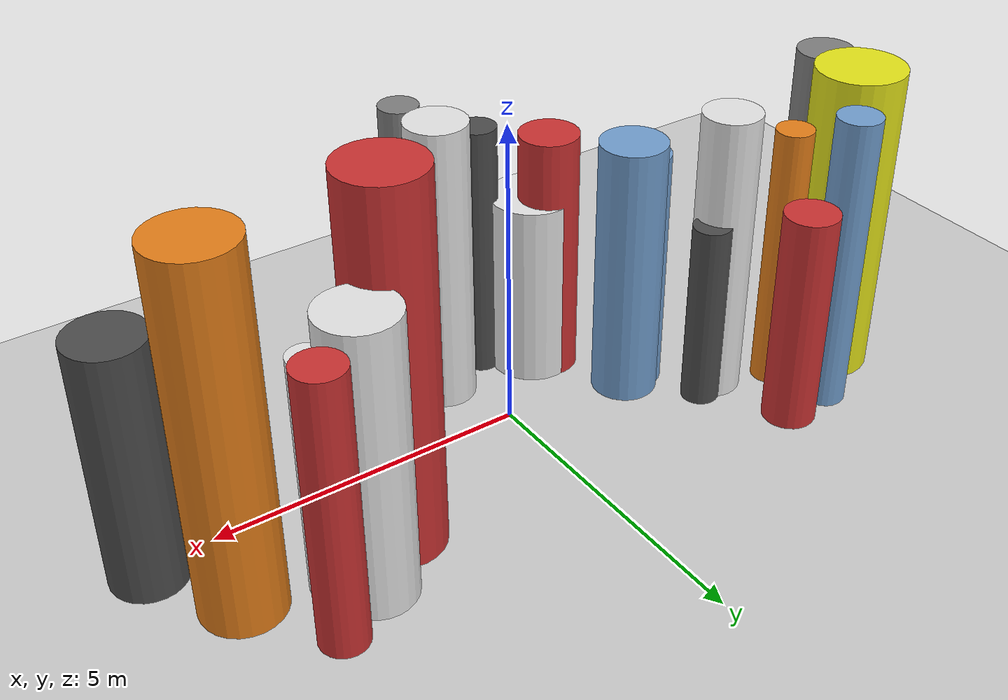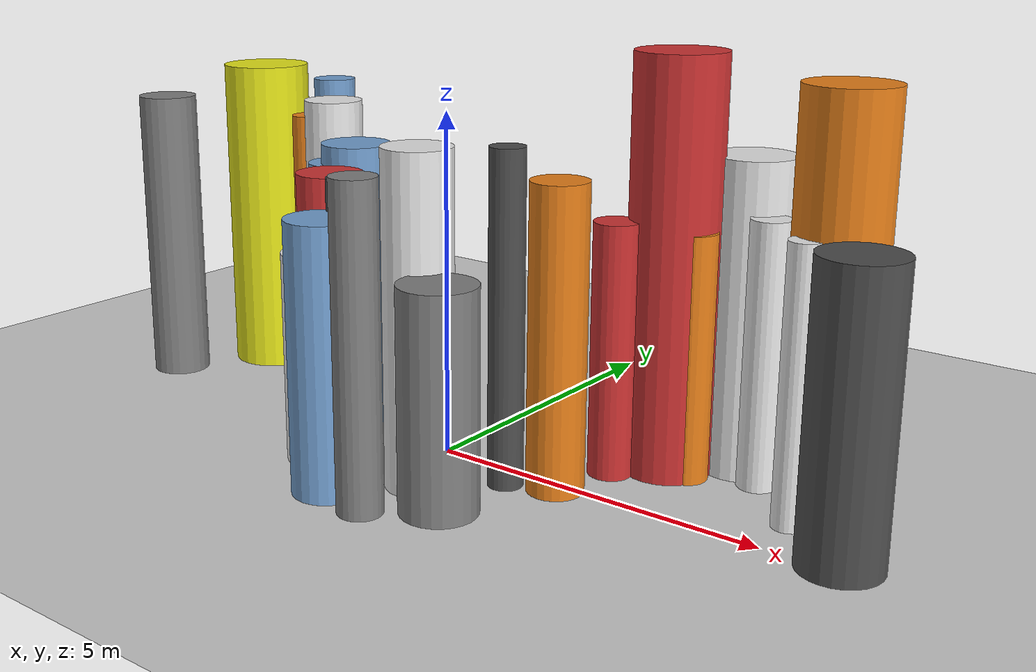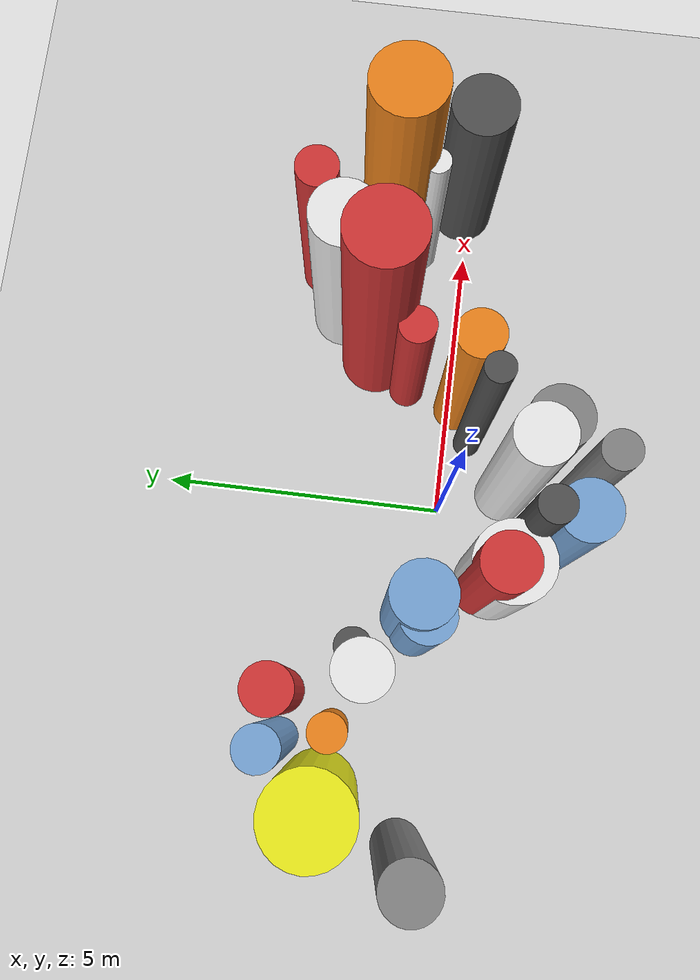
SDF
<?xml version='1.0'?>
<sdf version='1.6'>
  <world name='routeA_rl_v1__dense_recovery__rl_train__s_turn_multi_obstacle__000091'>
    <!-- Sun light -->
    <light name='sun' type='directional'>
      <cast_shadows>1</cast_shadows>
      <pose>0 0 10 0 0 0</pose>
      <diffuse>0.8 0.8 0.8 1</diffuse>
      <specular>0.2 0.2 0.2 1</specular>
      <attenuation>
        <range>1000</range>
        <constant>0.9</constant>
        <linear>0.01</linear>
        <quadratic>0.001</quadratic>
      </attenuation>
      <direction>-0.5 0.1 -0.9</direction>
    </light>

    <!-- Ground plane -->
    <model name='ground_plane'>
      <static>1</static>
      <link name='link'>
        <collision name='collision'>
          <geometry>
            <plane>
              <normal>0 0 1</normal>
              <size>100 100</size>
            </plane>
          </geometry>
          <surface>
            <contact>
              <collide_bitmask>65535</collide_bitmask>
              <ode/>
            </contact>
            <friction>
              <ode>
                <mu>100</mu>
                <mu2>50</mu2>
              </ode>
              <torsional><ode/></torsional>
            </friction>
            <bounce/>
          </surface>
          <max_contacts>10</max_contacts>
        </collision>
        <visual name='visual'>
          <cast_shadows>0</cast_shadows>
          <geometry>
            <plane>
              <normal>0 0 1</normal>
              <size>100 100</size>
            </plane>
          </geometry>
          <material>
            <script>
              <uri>file://media/materials/scripts/gazebo.material</uri>
              <n>Gazebo/Grey</n>
            </script>
          </material>
        </visual>
      </link>
    </model>

    <!-- Environment -->
    <magnetic_field>6e-06 2.3e-05 -4.2e-05</magnetic_field>
    <atmosphere type='adiabatic'/>
    <physics name='default_physics' default='0' type='ode'>
      <gravity>0 0 -9.8</gravity>
      <max_step_size>0.004</max_step_size>
      <real_time_factor>1</real_time_factor>
      <real_time_update_rate>250</real_time_update_rate>
    </physics>
    <scene>
      <ambient>0.4 0.4 0.4 1</ambient>
      <background>0.7 0.7 0.7 1</background>
      <shadows>1</shadows>
    </scene>
    <wind/>
    <spherical_coordinates>
      <surface_model>EARTH_WGS84</surface_model>
      <latitude_deg>0</latitude_deg>
      <longitude_deg>0</longitude_deg>
      <elevation>0</elevation>
      <heading_deg>0</heading_deg>
    </spherical_coordinates>

    <!-- ============ OBSTACLES (28) ============ -->
    <model name='s_turn_obs_0'>
      <static>1</static>
      <link name='link'>
        <visual name='visual'>
          <geometry>
            <cylinder>
              <radius>0.4577</radius>
              <length>4.6838</length>
            </cylinder>
          </geometry>
          <material>
            <script>
              <n>Gazebo/Grey</n>
              <uri>file://media/materials/scripts/gazebo.material</uri>
            </script>
            <ambient>0.5 0.5 0.5 1</ambient>
          </material>
        </visual>
        <collision name='collision'>
          <geometry>
            <cylinder>
              <radius>0.4577</radius>
              <length>4.6838</length>
            </cylinder>
          </geometry>
          <max_contacts>10</max_contacts>
          <surface>
            <contact><ode/></contact>
            <bounce/>
            <friction>
              <ode><mu>1</mu><mu2>1</mu2></ode>
              <torsional><ode/></torsional>
            </friction>
          </surface>
        </collision>
      </link>
      <pose>-6.0000 0.0941 2.3419 0 0 0.0000</pose>
    </model>

    <model name='s_turn_obs_1'>
      <static>1</static>
      <link name='link'>
        <visual name='visual'>
          <geometry>
            <cylinder>
              <radius>0.6924</radius>
              <length>5.1231</length>
            </cylinder>
          </geometry>
          <material>
            <script>
              <n>Gazebo/Yellow</n>
              <uri>file://media/materials/scripts/gazebo.material</uri>
            </script>
            <ambient>0.9 0.9 0.1 1</ambient>
          </material>
        </visual>
        <collision name='collision'>
          <geometry>
            <cylinder>
              <radius>0.6924</radius>
              <length>5.1231</length>
            </cylinder>
          </geometry>
          <max_contacts>10</max_contacts>
          <surface>
            <contact><ode/></contact>
            <bounce/>
            <friction>
              <ode><mu>1</mu><mu2>1</mu2></ode>
              <torsional><ode/></torsional>
            </friction>
          </surface>
        </collision>
      </link>
      <pose>-5.2000 1.5701 2.5615 0 0 0.0000</pose>
    </model>

    <model name='s_turn_obs_2'>
      <static>1</static>
      <link name='link'>
        <visual name='visual'>
          <geometry>
            <cylinder>
              <radius>0.3434</radius>
              <length>4.8623</length>
            </cylinder>
          </geometry>
          <material>
            <script>
              <n>Gazebo/Blue</n>
              <uri>file://media/materials/scripts/gazebo.material</uri>
            </script>
            <ambient>0.447 0.624 0.812 1</ambient>
          </material>
        </visual>
        <collision name='collision'>
          <geometry>
            <cylinder>
              <radius>0.3434</radius>
              <length>4.8623</length>
            </cylinder>
          </geometry>
          <max_contacts>10</max_contacts>
          <surface>
            <contact><ode/></contact>
            <bounce/>
            <friction>
              <ode><mu>1</mu><mu2>1</mu2></ode>
              <torsional><ode/></torsional>
            </friction>
          </surface>
        </collision>
      </link>
      <pose>-4.4000 2.3732 2.4312 0 0 0.0000</pose>
    </model>

    <model name='s_turn_obs_3'>
      <static>1</static>
      <link name='link'>
        <visual name='visual'>
          <geometry>
            <cylinder>
              <radius>0.4193</radius>
              <length>3.5834</length>
            </cylinder>
          </geometry>
          <material>
            <script>
              <n>Gazebo/Red</n>
              <uri>file://media/materials/scripts/gazebo.material</uri>
            </script>
            <ambient>0.8 0.2 0.2 1</ambient>
          </material>
        </visual>
        <collision name='collision'>
          <geometry>
            <cylinder>
              <radius>0.4193</radius>
              <length>3.5834</length>
            </cylinder>
          </geometry>
          <max_contacts>10</max_contacts>
          <surface>
            <contact><ode/></contact>
            <bounce/>
            <friction>
              <ode><mu>1</mu><mu2>1</mu2></ode>
              <torsional><ode/></torsional>
            </friction>
          </surface>
        </collision>
      </link>
      <pose>-3.6000 2.4374 1.7917 0 0 0.0000</pose>
    </model>

    <model name='s_turn_obs_4'>
      <static>1</static>
      <link name='link'>
        <visual name='visual'>
          <geometry>
            <cylinder>
              <radius>0.3004</radius>
              <length>3.0775</length>
            </cylinder>
          </geometry>
          <material>
            <script>
              <n>Gazebo/DarkGrey</n>
              <uri>file://media/materials/scripts/gazebo.material</uri>
            </script>
            <ambient>0.3 0.3 0.3 1</ambient>
          </material>
        </visual>
        <collision name='collision'>
          <geometry>
            <cylinder>
              <radius>0.3004</radius>
              <length>3.0775</length>
            </cylinder>
          </geometry>
          <max_contacts>10</max_contacts>
          <surface>
            <contact><ode/></contact>
            <bounce/>
            <friction>
              <ode><mu>1</mu><mu2>1</mu2></ode>
              <torsional><ode/></torsional>
            </friction>
          </surface>
        </collision>
      </link>
      <pose>-2.8000 1.2511 1.5388 0 0 0.0000</pose>
    </model>

    <model name='s_turn_obs_5'>
      <static>1</static>
      <link name='link'>
        <visual name='visual'>
          <geometry>
            <cylinder>
              <radius>0.5210</radius>
              <length>4.2993</length>
            </cylinder>
          </geometry>
          <material>
            <script>
              <n>Gazebo/Blue</n>
              <uri>file://media/materials/scripts/gazebo.material</uri>
            </script>
            <ambient>0.447 0.624 0.812 1</ambient>
          </material>
        </visual>
        <collision name='collision'>
          <geometry>
            <cylinder>
              <radius>0.5210</radius>
              <length>4.2993</length>
            </cylinder>
          </geometry>
          <max_contacts>10</max_contacts>
          <surface>
            <contact><ode/></contact>
            <bounce/>
            <friction>
              <ode><mu>1</mu><mu2>1</mu2></ode>
              <torsional><ode/></torsional>
            </friction>
          </surface>
        </collision>
      </link>
      <pose>-2.0000 0.3111 2.1496 0 0 0.0000</pose>
    </model>

    <model name='s_turn_obs_6'>
      <static>1</static>
      <link name='link'>
        <visual name='visual'>
          <geometry>
            <cylinder>
              <radius>0.6887</radius>
              <length>3.0522</length>
            </cylinder>
          </geometry>
          <material>
            <script>
              <n>Gazebo/White</n>
              <uri>file://media/materials/scripts/gazebo.material</uri>
            </script>
            <ambient>0.9 0.9 0.9 1</ambient>
          </material>
        </visual>
        <collision name='collision'>
          <geometry>
            <cylinder>
              <radius>0.6887</radius>
              <length>3.0522</length>
            </cylinder>
          </geometry>
          <max_contacts>10</max_contacts>
          <surface>
            <contact><ode/></contact>
            <bounce/>
            <friction>
              <ode><mu>1</mu><mu2>1</mu2></ode>
              <torsional><ode/></torsional>
            </friction>
          </surface>
        </collision>
      </link>
      <pose>-1.2000 -1.1211 1.5261 0 0 0.0000</pose>
    </model>

    <model name='s_turn_obs_7'>
      <static>1</static>
      <link name='link'>
        <visual name='visual'>
          <geometry>
            <cylinder>
              <radius>0.5052</radius>
              <length>3.8184</length>
            </cylinder>
          </geometry>
          <material>
            <script>
              <n>Gazebo/Blue</n>
              <uri>file://media/materials/scripts/gazebo.material</uri>
            </script>
            <ambient>0.447 0.624 0.812 1</ambient>
          </material>
        </visual>
        <collision name='collision'>
          <geometry>
            <cylinder>
              <radius>0.5052</radius>
              <length>3.8184</length>
            </cylinder>
          </geometry>
          <max_contacts>10</max_contacts>
          <surface>
            <contact><ode/></contact>
            <bounce/>
            <friction>
              <ode><mu>1</mu><mu2>1</mu2></ode>
              <torsional><ode/></torsional>
            </friction>
          </surface>
        </collision>
      </link>
      <pose>-0.4000 -2.0854 1.9092 0 0 0.0000</pose>
    </model>

    <model name='s_turn_obs_8'>
      <static>1</static>
      <link name='link'>
        <visual name='visual'>
          <geometry>
            <cylinder>
              <radius>0.3192</radius>
              <length>4.5101</length>
            </cylinder>
          </geometry>
          <material>
            <script>
              <n>Gazebo/Grey</n>
              <uri>file://media/materials/scripts/gazebo.material</uri>
            </script>
            <ambient>0.5 0.5 0.5 1</ambient>
          </material>
        </visual>
        <collision name='collision'>
          <geometry>
            <cylinder>
              <radius>0.3192</radius>
              <length>4.5101</length>
            </cylinder>
          </geometry>
          <max_contacts>10</max_contacts>
          <surface>
            <contact><ode/></contact>
            <bounce/>
            <friction>
              <ode><mu>1</mu><mu2>1</mu2></ode>
              <torsional><ode/></torsional>
            </friction>
          </surface>
        </collision>
      </link>
      <pose>0.4000 -2.3154 2.2551 0 0 0.0000</pose>
    </model>

    <model name='s_turn_obs_9'>
      <static>1</static>
      <link name='link'>
        <visual name='visual'>
          <geometry>
            <cylinder>
              <radius>0.5480</radius>
              <length>3.1179</length>
            </cylinder>
          </geometry>
          <material>
            <script>
              <n>Gazebo/Grey</n>
              <uri>file://media/materials/scripts/gazebo.material</uri>
            </script>
            <ambient>0.5 0.5 0.5 1</ambient>
          </material>
        </visual>
        <collision name='collision'>
          <geometry>
            <cylinder>
              <radius>0.5480</radius>
              <length>3.1179</length>
            </cylinder>
          </geometry>
          <max_contacts>10</max_contacts>
          <surface>
            <contact><ode/></contact>
            <bounce/>
            <friction>
              <ode><mu>1</mu><mu2>1</mu2></ode>
              <torsional><ode/></torsional>
            </friction>
          </surface>
        </collision>
      </link>
      <pose>1.2000 -1.6559 1.5589 0 0 0.0000</pose>
    </model>

    <model name='s_turn_obs_10'>
      <static>1</static>
      <link name='link'>
        <visual name='visual'>
          <geometry>
            <cylinder>
              <radius>0.4034</radius>
              <length>4.3114</length>
            </cylinder>
          </geometry>
          <material>
            <script>
              <n>Gazebo/Orange</n>
              <uri>file://media/materials/scripts/gazebo.material</uri>
            </script>
            <ambient>0.9 0.5 0.1 1</ambient>
          </material>
        </visual>
        <collision name='collision'>
          <geometry>
            <cylinder>
              <radius>0.4034</radius>
              <length>4.3114</length>
            </cylinder>
          </geometry>
          <max_contacts>10</max_contacts>
          <surface>
            <contact><ode/></contact>
            <bounce/>
            <friction>
              <ode><mu>1</mu><mu2>1</mu2></ode>
              <torsional><ode/></torsional>
            </friction>
          </surface>
        </collision>
      </link>
      <pose>2.0000 -0.1366 2.1557 0 0 0.0000</pose>
    </model>

    <model name='s_turn_obs_11'>
      <static>1</static>
      <link name='link'>
        <visual name='visual'>
          <geometry>
            <cylinder>
              <radius>0.6379</radius>
              <length>5.8964</length>
            </cylinder>
          </geometry>
          <material>
            <script>
              <n>Gazebo/Red</n>
              <uri>file://media/materials/scripts/gazebo.material</uri>
            </script>
            <ambient>0.8 0.2 0.2 1</ambient>
          </material>
        </visual>
        <collision name='collision'>
          <geometry>
            <cylinder>
              <radius>0.6379</radius>
              <length>5.8964</length>
            </cylinder>
          </geometry>
          <max_contacts>10</max_contacts>
          <surface>
            <contact><ode/></contact>
            <bounce/>
            <friction>
              <ode><mu>1</mu><mu2>1</mu2></ode>
              <torsional><ode/></torsional>
            </friction>
          </surface>
        </collision>
      </link>
      <pose>2.8000 1.4621 2.9482 0 0 0.0000</pose>
    </model>

    <model name='s_turn_obs_12'>
      <static>1</static>
      <link name='link'>
        <visual name='visual'>
          <geometry>
            <cylinder>
              <radius>0.5764</radius>
              <length>4.5002</length>
            </cylinder>
          </geometry>
          <material>
            <script>
              <n>Gazebo/White</n>
              <uri>file://media/materials/scripts/gazebo.material</uri>
            </script>
            <ambient>0.9 0.9 0.9 1</ambient>
          </material>
        </visual>
        <collision name='collision'>
          <geometry>
            <cylinder>
              <radius>0.5764</radius>
              <length>4.5002</length>
            </cylinder>
          </geometry>
          <max_contacts>10</max_contacts>
          <surface>
            <contact><ode/></contact>
            <bounce/>
            <friction>
              <ode><mu>1</mu><mu2>1</mu2></ode>
              <torsional><ode/></torsional>
            </friction>
          </surface>
        </collision>
      </link>
      <pose>3.6000 2.1527 2.2501 0 0 0.0000</pose>
    </model>

    <model name='s_turn_obs_13'>
      <static>1</static>
      <link name='link'>
        <visual name='visual'>
          <geometry>
            <cylinder>
              <radius>0.3595</radius>
              <length>4.3298</length>
            </cylinder>
          </geometry>
          <material>
            <script>
              <n>Gazebo/Red</n>
              <uri>file://media/materials/scripts/gazebo.material</uri>
            </script>
            <ambient>0.8 0.2 0.2 1</ambient>
          </material>
        </visual>
        <collision name='collision'>
          <geometry>
            <cylinder>
              <radius>0.3595</radius>
              <length>4.3298</length>
            </cylinder>
          </geometry>
          <max_contacts>10</max_contacts>
          <surface>
            <contact><ode/></contact>
            <bounce/>
            <friction>
              <ode><mu>1</mu><mu2>1</mu2></ode>
              <torsional><ode/></torsional>
            </friction>
          </surface>
        </collision>
      </link>
      <pose>4.4000 2.6750 2.1649 0 0 0.0000</pose>
    </model>

    <model name='s_turn_obs_14'>
      <static>1</static>
      <link name='link'>
        <visual name='visual'>
          <geometry>
            <cylinder>
              <radius>0.6225</radius>
              <length>5.6705</length>
            </cylinder>
          </geometry>
          <material>
            <script>
              <n>Gazebo/Orange</n>
              <uri>file://media/materials/scripts/gazebo.material</uri>
            </script>
            <ambient>0.9 0.5 0.1 1</ambient>
          </material>
        </visual>
        <collision name='collision'>
          <geometry>
            <cylinder>
              <radius>0.6225</radius>
              <length>5.6705</length>
            </cylinder>
          </geometry>
          <max_contacts>10</max_contacts>
          <surface>
            <contact><ode/></contact>
            <bounce/>
            <friction>
              <ode><mu>1</mu><mu2>1</mu2></ode>
              <torsional><ode/></torsional>
            </friction>
          </surface>
        </collision>
      </link>
      <pose>5.2000 1.3813 2.8353 0 0 0.0000</pose>
    </model>

    <model name='s_turn_obs_15'>
      <static>1</static>
      <link name='link'>
        <visual name='visual'>
          <geometry>
            <cylinder>
              <radius>0.5611</radius>
              <length>3.9245</length>
            </cylinder>
          </geometry>
          <material>
            <script>
              <n>Gazebo/DarkGrey</n>
              <uri>file://media/materials/scripts/gazebo.material</uri>
            </script>
            <ambient>0.3 0.3 0.3 1</ambient>
          </material>
        </visual>
        <collision name='collision'>
          <geometry>
            <cylinder>
              <radius>0.5611</radius>
              <length>3.9245</length>
            </cylinder>
          </geometry>
          <max_contacts>10</max_contacts>
          <surface>
            <contact><ode/></contact>
            <bounce/>
            <friction>
              <ode><mu>1</mu><mu2>1</mu2></ode>
              <torsional><ode/></torsional>
            </friction>
          </surface>
        </collision>
      </link>
      <pose>6.0000 0.1360 1.9622 0 0 0.0000</pose>
    </model>

    <model name='s_turn_obs2_0'>
      <static>1</static>
      <link name='link'>
        <visual name='visual'>
          <geometry>
            <cylinder>
              <radius>0.2114</radius>
              <length>3.5813</length>
            </cylinder>
          </geometry>
          <material>
            <script>
              <n>Gazebo/Blue</n>
              <uri>file://media/materials/scripts/gazebo.material</uri>
            </script>
            <ambient>0.447 0.624 0.812 1</ambient>
          </material>
        </visual>
        <collision name='collision'>
          <geometry>
            <cylinder>
              <radius>0.2114</radius>
              <length>3.5813</length>
            </cylinder>
          </geometry>
          <max_contacts>10</max_contacts>
          <surface>
            <contact><ode/></contact>
            <bounce/>
            <friction>
              <ode><mu>1</mu><mu2>1</mu2></ode>
              <torsional><ode/></torsional>
            </friction>
          </surface>
        </collision>
      </link>
      <pose>-5.0000 1.1543 1.7907 0 0 0.0000</pose>
    </model>

    <model name='s_turn_obs2_1'>
      <static>1</static>
      <link name='link'>
        <visual name='visual'>
          <geometry>
            <cylinder>
              <radius>0.2924</radius>
              <length>4.3762</length>
            </cylinder>
          </geometry>
          <material>
            <script>
              <n>Gazebo/Orange</n>
              <uri>file://media/materials/scripts/gazebo.material</uri>
            </script>
            <ambient>0.9 0.5 0.1 1</ambient>
          </material>
        </visual>
        <collision name='collision'>
          <geometry>
            <cylinder>
              <radius>0.2924</radius>
              <length>4.3762</length>
            </cylinder>
          </geometry>
          <max_contacts>10</max_contacts>
          <surface>
            <contact><ode/></contact>
            <bounce/>
            <friction>
              <ode><mu>1</mu><mu2>1</mu2></ode>
              <torsional><ode/></torsional>
            </friction>
          </surface>
        </collision>
      </link>
      <pose>-4.0909 1.4588 2.1881 0 0 0.0000</pose>
    </model>

    <model name='s_turn_obs2_2'>
      <static>1</static>
      <link name='link'>
        <visual name='visual'>
          <geometry>
            <cylinder>
              <radius>0.4544</radius>
              <length>4.7507</length>
            </cylinder>
          </geometry>
          <material>
            <script>
              <n>Gazebo/White</n>
              <uri>file://media/materials/scripts/gazebo.material</uri>
            </script>
            <ambient>0.9 0.9 0.9 1</ambient>
          </material>
        </visual>
        <collision name='collision'>
          <geometry>
            <cylinder>
              <radius>0.4544</radius>
              <length>4.7507</length>
            </cylinder>
          </geometry>
          <max_contacts>10</max_contacts>
          <surface>
            <contact><ode/></contact>
            <bounce/>
            <friction>
              <ode><mu>1</mu><mu2>1</mu2></ode>
              <torsional><ode/></torsional>
            </friction>
          </surface>
        </collision>
      </link>
      <pose>-3.1818 1.0725 2.3753 0 0 0.0000</pose>
    </model>

    <model name='s_turn_obs2_3'>
      <static>1</static>
      <link name='link'>
        <visual name='visual'>
          <geometry>
            <cylinder>
              <radius>0.4417</radius>
              <length>3.9938</length>
            </cylinder>
          </geometry>
          <material>
            <script>
              <n>Gazebo/Blue</n>
              <uri>file://media/materials/scripts/gazebo.material</uri>
            </script>
            <ambient>0.447 0.624 0.812 1</ambient>
          </material>
        </visual>
        <collision name='collision'>
          <geometry>
            <cylinder>
              <radius>0.4417</radius>
              <length>3.9938</length>
            </cylinder>
          </geometry>
          <max_contacts>10</max_contacts>
          <surface>
            <contact><ode/></contact>
            <bounce/>
            <friction>
              <ode><mu>1</mu><mu2>1</mu2></ode>
              <torsional><ode/></torsional>
            </friction>
          </surface>
        </collision>
      </link>
      <pose>-2.2727 0.1978 1.9969 0 0 0.0000</pose>
    </model>

    <model name='s_turn_obs2_4'>
      <static>1</static>
      <link name='link'>
        <visual name='visual'>
          <geometry>
            <cylinder>
              <radius>0.4749</radius>
              <length>4.1219</length>
            </cylinder>
          </geometry>
          <material>
            <script>
              <n>Gazebo/Red</n>
              <uri>file://media/materials/scripts/gazebo.material</uri>
            </script>
            <ambient>0.8 0.2 0.2 1</ambient>
          </material>
        </visual>
        <collision name='collision'>
          <geometry>
            <cylinder>
              <radius>0.4749</radius>
              <length>4.1219</length>
            </cylinder>
          </geometry>
          <max_contacts>10</max_contacts>
          <surface>
            <contact><ode/></contact>
            <bounce/>
            <friction>
              <ode><mu>1</mu><mu2>1</mu2></ode>
              <torsional><ode/></torsional>
            </friction>
          </surface>
        </collision>
      </link>
      <pose>-1.3636 -0.9160 2.0609 0 0 0.0000</pose>
    </model>

    <model name='s_turn_obs2_5'>
      <static>1</static>
      <link name='link'>
        <visual name='visual'>
          <geometry>
            <cylinder>
              <radius>0.3070</radius>
              <length>4.2533</length>
            </cylinder>
          </geometry>
          <material>
            <script>
              <n>Gazebo/DarkGrey</n>
              <uri>file://media/materials/scripts/gazebo.material</uri>
            </script>
            <ambient>0.3 0.3 0.3 1</ambient>
          </material>
        </visual>
        <collision name='collision'>
          <geometry>
            <cylinder>
              <radius>0.3070</radius>
              <length>4.2533</length>
            </cylinder>
          </geometry>
          <max_contacts>10</max_contacts>
          <surface>
            <contact><ode/></contact>
            <bounce/>
            <friction>
              <ode><mu>1</mu><mu2>1</mu2></ode>
              <torsional><ode/></torsional>
            </friction>
          </surface>
        </collision>
      </link>
      <pose>-0.4545 -1.4983 2.1267 0 0 0.0000</pose>
    </model>

    <model name='s_turn_obs2_6'>
      <static>1</static>
      <link name='link'>
        <visual name='visual'>
          <geometry>
            <cylinder>
              <radius>0.4896</radius>
              <length>4.7281</length>
            </cylinder>
          </geometry>
          <material>
            <script>
              <n>Gazebo/White</n>
              <uri>file://media/materials/scripts/gazebo.material</uri>
            </script>
            <ambient>0.9 0.9 0.9 1</ambient>
          </material>
        </visual>
        <collision name='collision'>
          <geometry>
            <cylinder>
              <radius>0.4896</radius>
              <length>4.7281</length>
            </cylinder>
          </geometry>
          <max_contacts>10</max_contacts>
          <surface>
            <contact><ode/></contact>
            <bounce/>
            <friction>
              <ode><mu>1</mu><mu2>1</mu2></ode>
              <torsional><ode/></torsional>
            </friction>
          </surface>
        </collision>
      </link>
      <pose>0.4545 -1.1610 2.3641 0 0 0.0000</pose>
    </model>

    <model name='s_turn_obs2_7'>
      <static>1</static>
      <link name='link'>
        <visual name='visual'>
          <geometry>
            <cylinder>
              <radius>0.2501</radius>
              <length>4.7244</length>
            </cylinder>
          </geometry>
          <material>
            <script>
              <n>Gazebo/DarkGrey</n>
              <uri>file://media/materials/scripts/gazebo.material</uri>
            </script>
            <ambient>0.3 0.3 0.3 1</ambient>
          </material>
        </visual>
        <collision name='collision'>
          <geometry>
            <cylinder>
              <radius>0.2501</radius>
              <length>4.7244</length>
            </cylinder>
          </geometry>
          <max_contacts>10</max_contacts>
          <surface>
            <contact><ode/></contact>
            <bounce/>
            <friction>
              <ode><mu>1</mu><mu2>1</mu2></ode>
              <torsional><ode/></torsional>
            </friction>
          </surface>
        </collision>
      </link>
      <pose>1.3636 -0.4184 2.3622 0 0 0.0000</pose>
    </model>

    <model name='s_turn_obs2_8'>
      <static>1</static>
      <link name='link'>
        <visual name='visual'>
          <geometry>
            <cylinder>
              <radius>0.3191</radius>
              <length>3.6347</length>
            </cylinder>
          </geometry>
          <material>
            <script>
              <n>Gazebo/Red</n>
              <uri>file://media/materials/scripts/gazebo.material</uri>
            </script>
            <ambient>0.8 0.2 0.2 1</ambient>
          </material>
        </visual>
        <collision name='collision'>
          <geometry>
            <cylinder>
              <radius>0.3191</radius>
              <length>3.6347</length>
            </cylinder>
          </geometry>
          <max_contacts>10</max_contacts>
          <surface>
            <contact><ode/></contact>
            <bounce/>
            <friction>
              <ode><mu>1</mu><mu2>1</mu2></ode>
              <torsional><ode/></torsional>
            </friction>
          </surface>
        </collision>
      </link>
      <pose>2.2727 0.8195 1.8173 0 0 0.0000</pose>
    </model>

    <model name='s_turn_obs2_9'>
      <static>1</static>
      <link name='link'>
        <visual name='visual'>
          <geometry>
            <cylinder>
              <radius>0.3061</radius>
              <length>3.5227</length>
            </cylinder>
          </geometry>
          <material>
            <script>
              <n>Gazebo/Orange</n>
              <uri>file://media/materials/scripts/gazebo.material</uri>
            </script>
            <ambient>0.9 0.5 0.1 1</ambient>
          </material>
        </visual>
        <collision name='collision'>
          <geometry>
            <cylinder>
              <radius>0.3061</radius>
              <length>3.5227</length>
            </cylinder>
          </geometry>
          <max_contacts>10</max_contacts>
          <surface>
            <contact><ode/></contact>
            <bounce/>
            <friction>
              <ode><mu>1</mu><mu2>1</mu2></ode>
              <torsional><ode/></torsional>
            </friction>
          </surface>
        </collision>
      </link>
      <pose>3.1818 1.3542 1.7613 0 0 0.0000</pose>
    </model>

    <model name='s_turn_obs2_10'>
      <static>1</static>
      <link name='link'>
        <visual name='visual'>
          <geometry>
            <cylinder>
              <radius>0.2812</radius>
              <length>3.7720</length>
            </cylinder>
          </geometry>
          <material>
            <script>
              <n>Gazebo/White</n>
              <uri>file://media/materials/scripts/gazebo.material</uri>
            </script>
            <ambient>0.9 0.9 0.9 1</ambient>
          </material>
        </visual>
        <collision name='collision'>
          <geometry>
            <cylinder>
              <radius>0.2812</radius>
              <length>3.7720</length>
            </cylinder>
          </geometry>
          <max_contacts>10</max_contacts>
          <surface>
            <contact><ode/></contact>
            <bounce/>
            <friction>
              <ode><mu>1</mu><mu2>1</mu2></ode>
              <torsional><ode/></torsional>
            </friction>
          </surface>
        </collision>
      </link>
      <pose>4.0909 1.7041 1.8860 0 0 0.0000</pose>
    </model>

    <model name='s_turn_obs2_11'>
      <static>1</static>
      <link name='link'>
        <visual name='visual'>
          <geometry>
            <cylinder>
              <radius>0.2259</radius>
              <length>3.8018</length>
            </cylinder>
          </geometry>
          <material>
            <script>
              <n>Gazebo/White</n>
              <uri>file://media/materials/scripts/gazebo.material</uri>
            </script>
            <ambient>0.9 0.9 0.9 1</ambient>
          </material>
        </visual>
        <collision name='collision'>
          <geometry>
            <cylinder>
              <radius>0.2259</radius>
              <length>3.8018</length>
            </cylinder>
          </geometry>
          <max_contacts>10</max_contacts>
          <surface>
            <contact><ode/></contact>
            <bounce/>
            <friction>
              <ode><mu>1</mu><mu2>1</mu2></ode>
              <torsional><ode/></torsional>
            </friction>
          </surface>
        </collision>
      </link>
      <pose>5.0000 0.7943 1.9009 0 0 0.0000</pose>
    </model>

    <!-- GUI camera -->
    <gui fullscreen='0'>
      <camera name='user_camera'>
        <pose>-15 0 18 0 0.85 0.15</pose>
        <view_controller>orbit</view_controller>
        <projection_type>perspective</projection_type>
      </camera>
    </gui>
  </world>
</sdf>
